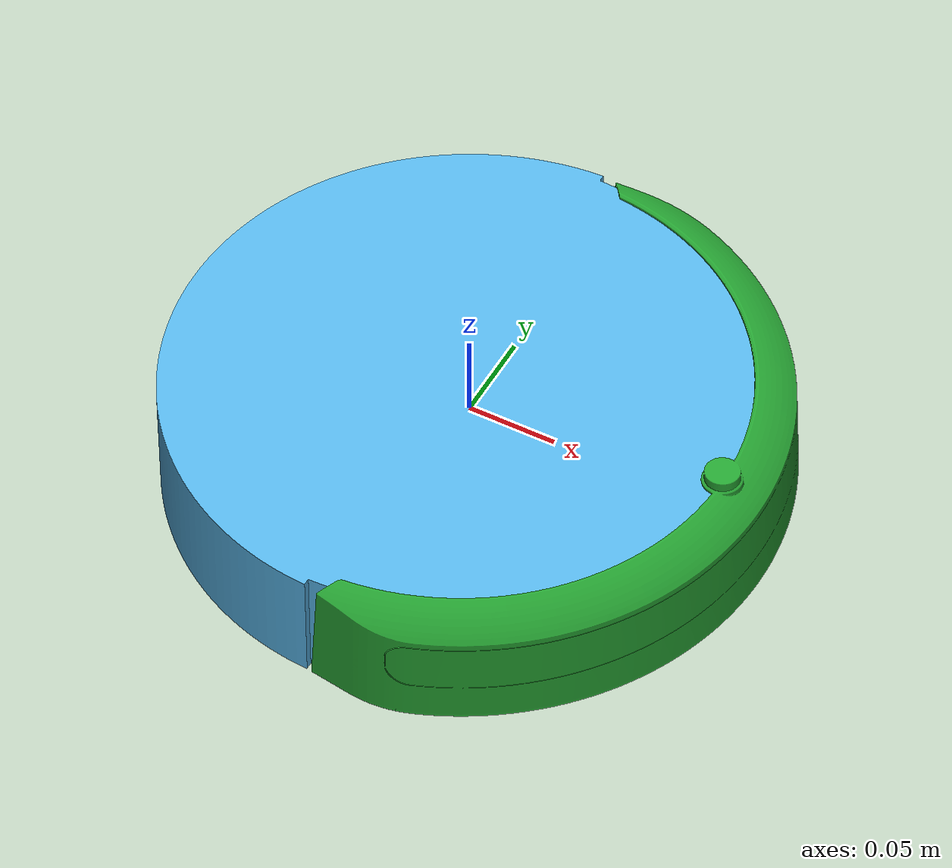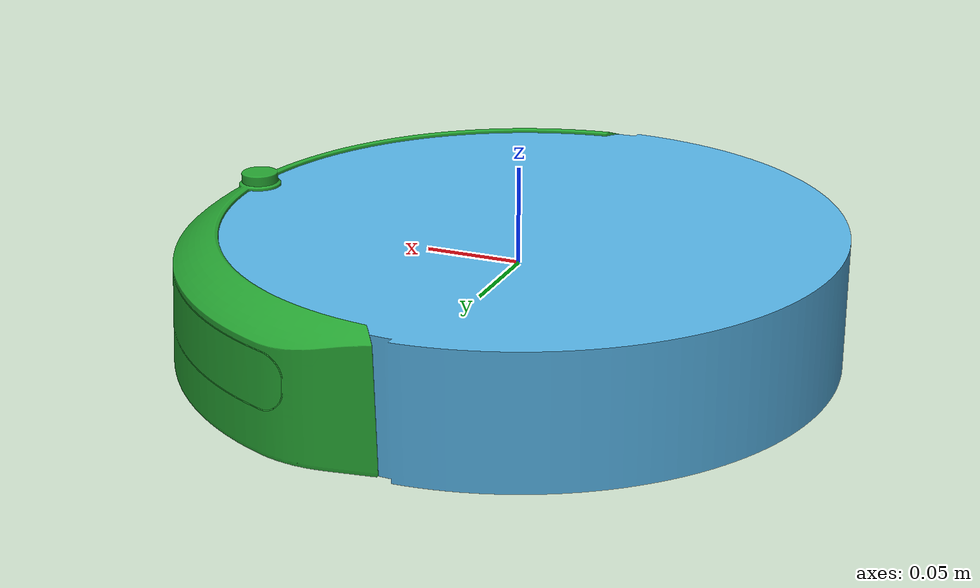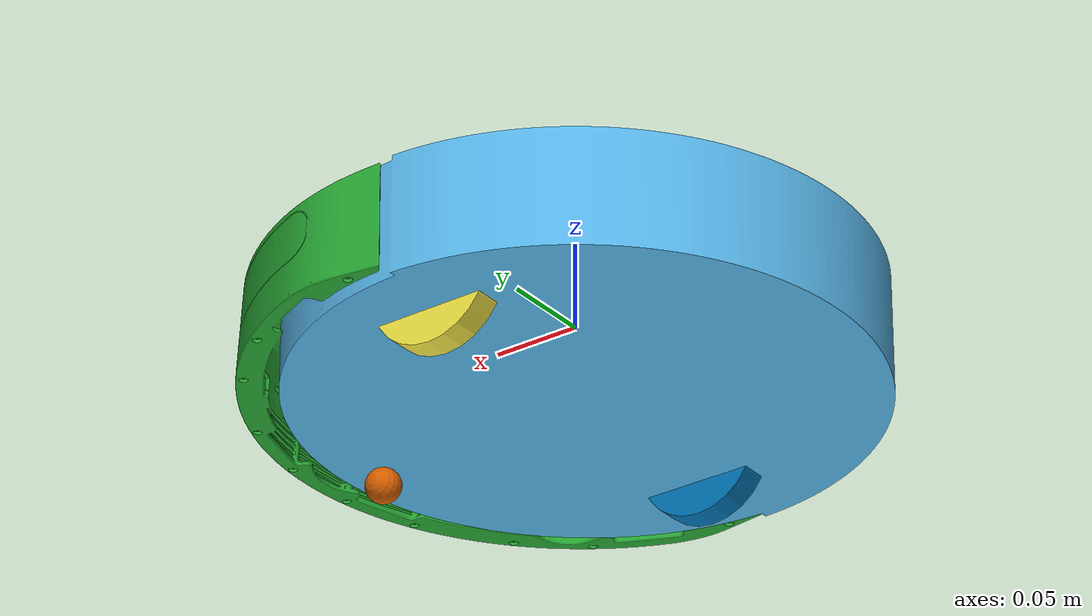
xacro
<?xml version="1.0"?>
<robot name="create3_standalone"
       xmlns:sensor="http://playerstage.sourceforge.net/gazebo/xmlschema/#sensor"
       xmlns:controller="http://playerstage.sourceforge.net/gazebo/xmlschema/#controller"
       xmlns:interface="http://playerstage.sourceforge.net/gazebo/xmlschema/#interface"
       xmlns:xacro="http://ros.org/wiki/xacro">

  <!-- Defines the Create3 component tag. -->
  <xacro:include filename="$(find create3_description)/urdf/create3.urdf.xacro" />
  <xacro:create3/>
</robot>

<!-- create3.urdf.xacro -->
<!--
  This is not a standalone urdf for Create 3. It simply defines the 'create3' tag that can
  be added by other urdf files (e.g. turtlebot).
 -->
<robot name="create3" xmlns:xacro="http://ros.org/wiki/xacro">
  <xacro:include filename="$(find create3_description)/urdf/common_properties.urdf.xacro"/>
  <xacro:include filename="$(find create3_description)/urdf/simple_bumper.xacro" />
  <xacro:include filename="$(find create3_description)/urdf/wheel.xacro" />

  <!-- MECHANICAL PROPERTIES -->
  <xacro:property name="body_z_offset" value="-0.025" /><!-- z offset from ground [m] -->
  <xacro:property name="body_mass" value="2.300" />
  <xacro:property name="body_radius" value="0.16" />
  <xacro:property name="body_length" value="0.048" />

  <xacro:property name="bumper_mass" value="0.1" /> <!-- [kg] -->
  <xacro:property name="bumper_offset_z" value="-0.025" />

  <xacro:property name="wheel_height" value="-0.0275" />
  <xacro:property name="distance_between_wheels" value="0.233" />

  <xacro:property name="caster_mass" value="0.1" /> <!-- [kg] -->
  <xacro:property name="caster_radius" value="0.01" />
  <xacro:property name="caster_width" value="0.018" />
  <xacro:property name="caster_position_x" value="0.125" />
  <xacro:property name="caster_position_y" value="0" />
  <xacro:property name="caster_position_z" value="-0.054" />

  <xacro:property name="battery_mass_kg" value="1"/>
  <xacro:property name="battery_pos_x"   value="0.1"/>
  <xacro:property name="battery_pos_z"   value="-0.01"/>
  <xacro:property name="battery_x_in"    value="2.2"/>
  <xacro:property name="battery_y_in"    value="5.7"/>
  <xacro:property name="battery_z_in"    value="2.5"/>

  <xacro:property name="robot_type" value="create3" />
  <xacro:arg name="use_mechanical_wheeldrop" default="false" />

  <!-- Create 3 base definitions-->
  <xacro:macro name="create3">
    <link name="base_footprint"/>

    <joint name="base_footprint_joint" type="fixed">
      <parent link="base_footprint"/>
      <child link="base_link" />
    </joint>

    <link name="base_link">
      <visual>
        <origin xyz="0 0 ${body_z_offset}" rpy="0 0 ${-pi*3.0/2.0}"/>
        <geometry>
          <mesh filename="model://meshes/create3_body_simplified_model.stl" scale="0.001 0.001 0.001"/>
        </geometry>
      </visual>
      <collision name = "create3_base_collision">
        <origin xyz="-0.005 0 ${(body_z_offset/2.) + 0.01}"/>
        <geometry>
          <cylinder length="${body_length}" radius="${body_radius}"/>
        </geometry>
      </collision>
      <xacro:inertial_cilinder_with_pose mass="${body_mass}" radius="${body_radius}" length="${body_length}">
        <origin xyz="0 0 ${body_z_offset - 0.02}"/>
      </xacro:inertial_cilinder_with_pose>
    </link>

    <!-- Bumper configuration  -->
    <xacro:property name="bumper_visual_mesh" value="model://meshes/bumper.stl"/>
    <xacro:property name="bumper_collision_mesh" value="model://meshes/bumper_collision.stl"/>

    <xacro:simple_bumper
        parent_link="base_link"
        robot_type="${robot_type}"
        visual_mesh="${bumper_visual_mesh}"
        collision_mesh="${bumper_collision_mesh}">
      <origin xyz="0 0 ${bumper_offset_z}"/>
      <inertial>
        <origin xyz="0.08 0 ${bumper_offset_z + 0.01}"/>
        <mass value="${bumper_mass}"/>
        <inertia ixx="0.0013483753405" ixy="0.0000000454352" ixz="0.0000014434849" iyy="0.0002521736852" iyz="-0.0000000006721" izz="0.0015442525386"/>
      </inertial>
    </xacro:simple_bumper>

    <!-- Wheel configuration -->
    <!-- Default wheel with mechanical wheel drop -->
    <xacro:if value="$(arg use_mechanical_wheeldrop)">
      <xacro:wheel_with_wheeldrop name="left" parent_link="base_link">
        <origin xyz="0 ${distance_between_wheels/2} ${wheel_height}" rpy="${-pi/2} 0 0"/>
      </xacro:wheel_with_wheeldrop>

      <xacro:wheel_with_wheeldrop name="right" parent_link="base_link">
        <origin xyz="0 ${-distance_between_wheels/2} ${wheel_height}" rpy="${-pi/2} 0 0"/>
      </xacro:wheel_with_wheeldrop>
    </xacro:if>

    <!-- Default wheel without mechanical wheel drop -->
    <xacro:unless value="$(arg use_mechanical_wheeldrop)">
      <!-- Left wheel -->
      <xacro:wheel name="left" parent_link="base_link">
        <origin xyz="0 ${distance_between_wheels/2} ${wheel_height}" rpy="${-pi/2} 0 0"/>
      </xacro:wheel>
      <!-- Right wheel -->
      <xacro:wheel name="right" parent_link="base_link">
        <origin xyz="0 ${-distance_between_wheels/2} ${wheel_height}" rpy="${-pi/2} 0 0"/>
      </xacro:wheel>
    </xacro:unless>

    <joint name="caster_front_joint" type="fixed">
      <parent link="base_link"/>
      <child link="caster_front_link"/>
      <origin xyz="${caster_position_x} ${caster_position_y} ${caster_position_z}" rpy="${-pi/2} 0 0"/>
    </joint>
    <link name="caster_front_link">
      <visual>
        <geometry>
          <sphere radius="${caster_radius}"/>
        </geometry>
      </visual>
      <collision>
        <geometry>
          <sphere radius="${caster_radius}"/>
        </geometry>
      </collision>
    </link>

    <!-- Battery -->
    <joint name="battery_joint" type="fixed">
      <origin xyz="${battery_pos_x} 0 ${battery_pos_z}"/>
      <parent link="base_link"/>
      <child link="battery_link"/>
    </joint>
    <link name="battery_link">
      <xacro:inertial_cuboid mass="${battery_mass_kg}"
                             x_length="${battery_x_in*in2m}"
                             y_length="${battery_y_in*in2m}"
                             z_length="${battery_z_in*in2m}"/>
    </link>

  </xacro:macro>
</robot>

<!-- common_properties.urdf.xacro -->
<!--
  Various useful properties such as constants and materials
 -->
<robot name="xacro_properties" xmlns:xacro="http://ros.org/wiki/xacro">
  <xacro:property name="M_PI" value="3.1415926535897931" />
  <xacro:property name="material_white">
    <material name="white">
      <color rgba="1 1 1 1"/>
    </material>
  </xacro:property>
  <xacro:property name="material_grey">
    <material name="grey">
      <color rgba="0.5 0.5 0.5 1"/>
    </material>
  </xacro:property>
  <xacro:property name="material_light_grey">
    <material name="light_grey">
      <color rgba="0.6 0.6 0.6 1"/>
    </material>
  </xacro:property>
  <xacro:property name="material_dark_grey">
    <material name="dark_grey">
      <color rgba="0.3 0.3 0.3 1"/>
    </material>
  </xacro:property>
  <xacro:property name="material_black">
    <material name="black">
      <color rgba="0.1 0.1 0.1 1"/>
    </material>
  </xacro:property>
  <xacro:property name="material_red">
    <material name="red">
      <color rgba="1 0 0 1"/>
    </material>
  </xacro:property>
  <xacro:property name="material_green">
    <material name="green">
      <color rgba="0.0 0.8 0.0 1"/>
    </material>
  </xacro:property>
  <xacro:property name="material_blue">
    <material name="blue">
      <color rgba="0.0 0.0 1.0 1"/>
    </material>
  </xacro:property>
  <xacro:property name="material_grey_blue">
    <material name="grey_blue">
      <color rgba="0.4 0.4 1.0 1"/>
    </material>
  </xacro:property>
  <xacro:property name="material_orange">
    <material name="orange">
      <color rgba="1.0 0.7 0.0 1"/>
    </material>
  </xacro:property>

  <xacro:macro name="inertial_cuboid" params="mass x_length y_length z_length">
    <inertial>
      <mass value="${mass}" />
      <origin xyz="0 0 0" />
      <inertia ixx="${(1/12) * mass * (y_length*y_length + z_length*z_length)}" ixy="0.0" ixz="0.0"
	iyy="${(1/12) * mass * (x_length*x_length + z_length*z_length)}" iyz="0.0"
	izz="${(1/12) * mass * (x_length*x_length + y_length*y_length)}" />
    </inertial>
  </xacro:macro>

  <xacro:macro name="inertial_cuboid_with_pose" params="mass x_length y_length z_length *origin">
    <inertial>
      <xacro:insert_block name="origin"/>
      <mass value="${mass}" />
      <inertia ixx="${(1/12) * mass * (y_length*y_length + z_length*z_length)}" ixy="0.0" ixz="0.0"
	iyy="${(1/12) * mass * (x_length*x_length + z_length*z_length)}" iyz="0.0"
	izz="${(1/12) * mass * (x_length*x_length + y_length*y_length)}" />
    </inertial>
  </xacro:macro>

  <xacro:macro name="inertial_cilinder" params="mass radius length">
    <inertial>
      <mass value="${mass}"/>
      <origin xyz="0 0 0" />
      <inertia ixx="${(1/12) * mass * (3*radius*radius + length*length)}" ixy="0.0" ixz="0.0"
	iyy="${(1/12) * mass * (3*radius*radius + length*length)}" iyz="0.0"
	izz="${(1/2) * mass * (radius*radius)}" />
    </inertial>
  </xacro:macro>

  <xacro:macro name="inertial_cilinder_with_pose" params="mass radius length *origin">
    <inertial>
      <xacro:insert_block name="origin"/>
      <mass value="${mass}" />
      <inertia ixx="${(1/12) * mass * (3*radius*radius + length*length)}" ixy="0.0" ixz="0.0"
	iyy="${(1/12) * mass * (3*radius*radius + length*length)}" iyz="0.0"
	izz="${(1/2) * mass * (radius*radius)}" />
    </inertial>
  </xacro:macro>

  <xacro:macro name="inertial_sphere" params="mass diameter">
    <inertial>
      <mass value="${mass}" />
      <origin xyz="0 0 0" />
      <inertia ixx="${(2/5) * mass * ( (diameter*0.5) * (diameter*0.5) )}" ixy="0.0" ixz="0.0"
	iyy="${(2/5) * mass * ( (diameter*0.5) * (diameter*0.5) )}" iyz="0.0"
	izz="${(2/5) * mass * ( (diameter*0.5) * (diameter*0.5) )}" />
    </inertial>
  </xacro:macro>

  <xacro:macro name="inertial_sphere_with_pose" params="mass diameter *origin">
    <inertial>
      <xacro:insert_block name="origin"/>
      <mass value="${mass}" />
      <inertia ixx="${(2/5) * mass * ( (diameter*0.5) * (diameter*0.5) )}" ixy="0.0" ixz="0.0"
	iyy="${(2/5) * mass * ( (diameter*0.5) * (diameter*0.5) )}" iyz="0.0"
	izz="${(2/5) * mass * ( (diameter*0.5) * (diameter*0.5) )}" />
    </inertial>
  </xacro:macro>

  <xacro:macro name="inertial_dummy">
    <xacro:inertial_cuboid mass="0.01" x_length="0.01" y_length="0.01" z_length="0.01" />
  </xacro:macro>

  <xacro:property name="deg2rad" value="${pi/180.0}"/>
  <xacro:property name="mm2m"    value="${1/1000.0}"/>
  <xacro:property name="cm2m"    value="${1/100.0}"/>
  <xacro:property name="in2m"    value="0.0254"/>
  <xacro:property name="lbs2kg"  value="0.453592"/>
</robot>

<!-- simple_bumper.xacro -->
<robot xmlns:xacro="http://ros.org/wiki/xacro">

<xacro:macro name="simple_bumper" params="name:=bumper parent_link robot_type visual_mesh collision_mesh
                                          *origin *inertial">

  <joint name="${name}_joint" type="prismatic">
    <parent link="${parent_link}"/>
    <child link="${name}_link"/>
    <axis xyz="0 1 0"/>
    <xacro:insert_block name="origin"/>
    <limit lower="0" upper="0" velocity="0.01" effort="30"/>
  </joint>
  <link name="${name}_link">
    <visual>
      <geometry>
        <mesh filename="${visual_mesh}"/>
      </geometry>
    </visual>
    <collision>
      <geometry>
        <mesh filename="${collision_mesh}"/>
      </geometry>
    </collision>
    <xacro:insert_block name="inertial"/>
  </link>

  <gazebo reference="bumper_link" >
    <mu1>0.1</mu1>
    <mu2>0.1</mu2>
    <maxVel>0.01</maxVel>
    <minDepth>0.001</minDepth>
    <maxContacts>10</maxContacts>
    <material>Gazebo/Green</material>
    <sensor name='${name}_contact_sensor' type='contact'>
      <always_on>true</always_on>
      <update_rate>40</update_rate>
      <contact>
        <collision>${name}_link_collision</collision>
      </contact>
    </sensor>
  </gazebo>

</xacro:macro>

</robot>

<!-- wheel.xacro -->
<robot xmlns:xacro="http://ros.org/wiki/xacro">

<xacro:macro name="wheel" params="name parent_link *origin">

  <xacro:property name="wheel_mass" value="0.2" /> <!-- [kg] -->
  <xacro:property name="wheel_radius" value="0.03575" />
  <xacro:property name="wheel_width" value="0.015" />

  <joint name="wheel_${name}_joint" type="continuous">
    <parent link="${parent_link}"/>
    <child link="wheel_${name}_link"/>
    <xacro:insert_block name="origin"/>
    <axis xyz="0 0 1"/>
  </joint>

  <link name="wheel_${name}_link">
    <visual>
      <geometry>
          <cylinder length="${wheel_width}" radius="${wheel_radius}"/>
      </geometry>
    </visual>
    <collision>
      <geometry>
        <cylinder length="${wheel_width}" radius="${wheel_radius}"/>
      </geometry>
    </collision>
    <xacro:inertial_cilinder mass="${wheel_mass}" radius="${wheel_radius}" length="${wheel_width}" />
  </link>

  <gazebo reference="wheel_${name}_link">
    <mu1>1.0</mu1>
    <mu2>1.0</mu2>
    <kp>1000000.0</kp>
    <kd>100.0</kd>
    <minDepth>0.0001</minDepth>
    <maxVel>1.0</maxVel>
  </gazebo>

</xacro:macro>
</robot>
